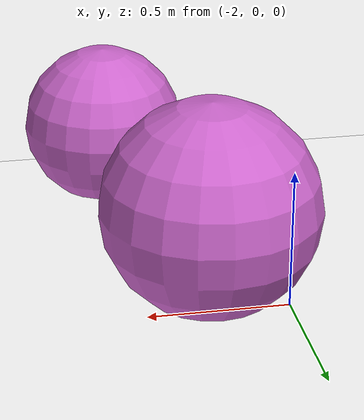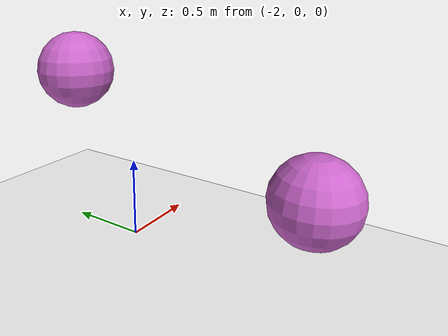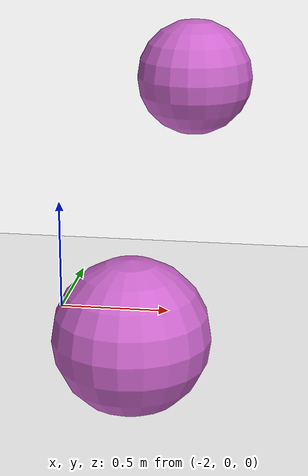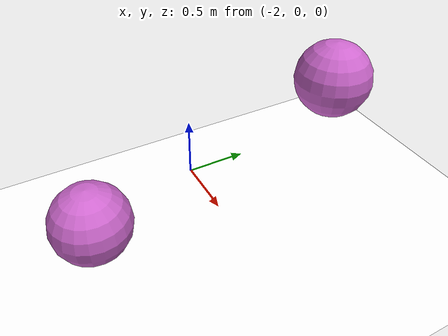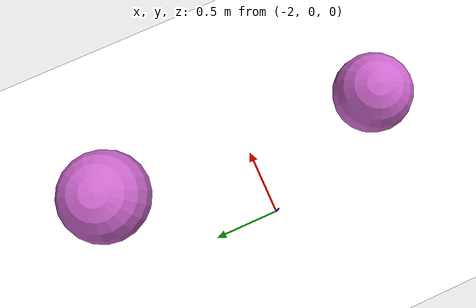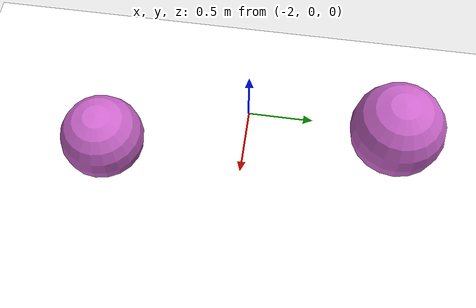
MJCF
<mujoco model="scene2_identical_objects">
  <compiler angle="radian"/>
  <option timestep="0.002" gravity="0 0 -9.81">
    <flag contact="disable"/>
  </option>
  <visual>
    <global offwidth="800" offheight="800"/>
    <quality shadowsize="4096"/>
  </visual>
  <asset>
    <texture name="white_skybox"
             type="skybox"
             builtin="flat"
             width="512"
             height="512"
             rgb1="1 1 1"
             rgb2="1 1 1"/>
    <material name="white_floor" rgba="1 1 1 1" reflectance="0"/>
  </asset>
  <worldbody>
    <light directional="true" pos="0 0 3" dir="0 0 -1" diffuse="0.8 0.8 0.8"/>
    <light directional="true" pos="2 2 3" dir="-0.5 -0.5 -1" diffuse="0.4 0.4 0.4"/>
    <geom name="floor" type="plane" size="5 5 0.1" material="white_floor" pos="0 0 -0.5"/>

    <body name="target" pos="0 0 0.5">
      <site name="target_site" size="0.01" rgba="1 0 0 0"/>
    </body>

    <!-- Two identical white spheres -->
    <body name="sphere_1" pos="-1.5 -1.0 0.3">
      <freejoint/>
      <geom name="sphere1_geom" type="sphere" size="0.3" rgba="0.8 0.4 0.8 1" mass="1"/>
    </body>
    <body name="sphere_2" pos="-1.5 1.0 0.9">
      <freejoint/>
      <geom name="sphere2_geom" type="sphere" size="0.3" rgba="0.8 0.4 0.8 1" mass="1"/>
    </body>

    <!-- Scaled 1.6x for 800x800 square resolution — spheres travel ±1.5m X, ±1.0m Y -->
    <camera name="cam0" pos="4.8 0 2.4" mode="targetbody" target="target" fovy="50"/>
    <camera name="cam1" pos="0 4.8 2.4" mode="targetbody" target="target" fovy="50"/>
    <camera name="cam2" pos="-4.8 0 2.4" mode="targetbody" target="target" fovy="50"/>
    <camera name="cam3" pos="0 -4.8 2.4" mode="targetbody" target="target" fovy="50"/>
    <camera name="cam4" pos="4.0 4.0 4.0" mode="targetbody" target="target" fovy="50"/>
    <camera name="cam5" pos="-4.0 4.0 4.0" mode="targetbody" target="target" fovy="50"/>
    <camera name="cam6" pos="4.0 -4.0 4.0" mode="targetbody" target="target" fovy="50"/>
    <camera name="cam7" pos="-4.0 -4.0 4.0" mode="targetbody" target="target" fovy="50"/>
    <camera name="cam8" pos="3.2 0 1.3" mode="targetbody" target="target" fovy="55"/>
    <camera name="cam9" pos="-3.2 0 1.3" mode="targetbody" target="target" fovy="55"/>
    <camera name="cam10" pos="0 0 5.6" mode="targetbody" target="target" fovy="45"/>
    <camera name="cam11" pos="2.4 2.4 4.8" mode="targetbody" target="target" fovy="45"/>
  </worldbody>
</mujoco>
